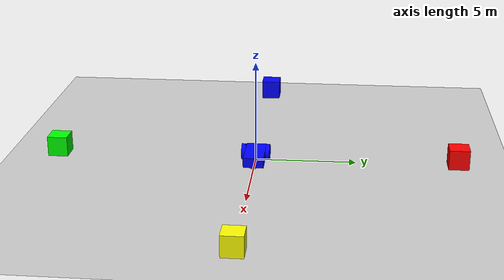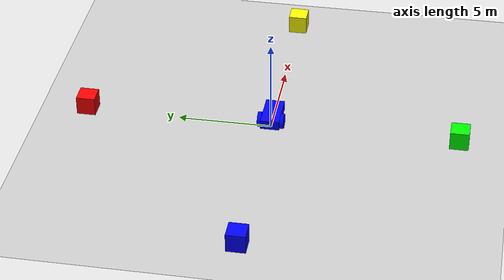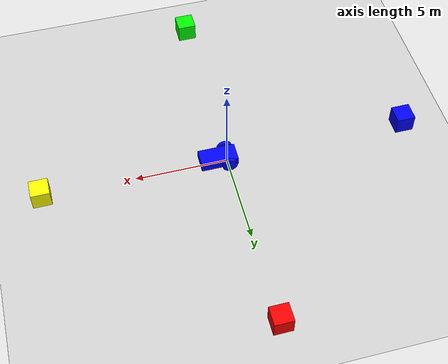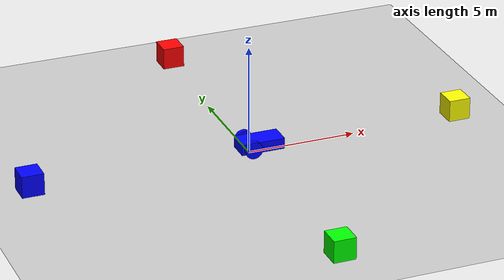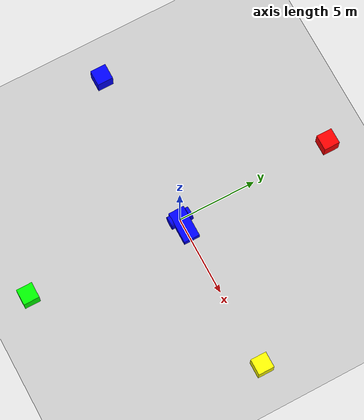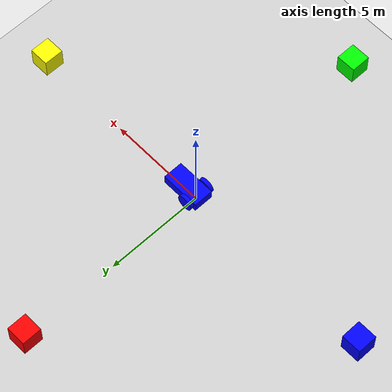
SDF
<?xml version="1.0" encoding="UTF-8"?>
<sdf version='1.9'>
  <world name='myrobot'>
    <physics name='1ms' type='ignored'>
      <max_step_size>0.001</max_step_size>
      <real_time_factor>1</real_time_factor>
      <real_time_update_rate>1000</real_time_update_rate>
    </physics>
    <plugin name='ignition::gazebo::systems::Physics' filename='ignition-gazebo-physics-system'/>
    <plugin name='ignition::gazebo::systems::UserCommands' filename='ignition-gazebo-user-commands-system'/>
    <plugin name='ignition::gazebo::systems::SceneBroadcaster' filename='ignition-gazebo-scene-broadcaster-system'/>
    <plugin name='ignition::gazebo::systems::Contact' filename='ignition-gazebo-contact-system'/>
    <plugin name='gz::sim::systems::Sensors' filename='ignition-gazebo-sensors-system'>
      <render_engine>ogre</render_engine>
    </plugin>
    <gravity>0 0 -9.8</gravity>
    <magnetic_field>6e-06 2.3e-05 -4.2e-05</magnetic_field>
    <atmosphere type='adiabatic'/>
    <scene>
      <ambient>0.4 0.4 0.4 1</ambient>
      <background>0.7 0.7 0.7 1</background>
      <shadows>true</shadows>
    </scene>
    <model name='ground_plane'>
      <static>true</static>
      <link name='link'>
        <collision name='collision'>
          <geometry>
            <plane>
              <normal>0 0 1</normal>
              <size>100 100</size>
            </plane>
          </geometry>
          <surface>
            <friction>
              <ode/>
            </friction>
            <bounce/>
            <contact/>
          </surface>
        </collision>
        <visual name='visual'>
          <geometry>
            <plane>
              <normal>0 0 1</normal>
              <size>100 100</size>
            </plane>
          </geometry>
          <material>
            <ambient>0.8 0.8 0.8 1</ambient>
            <diffuse>0.8 0.8 0.8 1</diffuse>
            <specular>0.8 0.8 0.8 1</specular>
          </material>
        </visual>
        <pose>0 0 0 0 -0 0</pose>
        <inertial>
          <pose>0 0 0 0 -0 0</pose>
          <mass>1</mass>
          <inertia>
            <ixx>1</ixx>
            <ixy>0</ixy>
            <ixz>0</ixz>
            <iyy>1</iyy>
            <iyz>0</iyz>
            <izz>1</izz>
          </inertia>
        </inertial>
        <enable_wind>false</enable_wind>
      </link>
      <pose>10 0 0 0 -0 0</pose>
      <self_collide>false</self_collide>
    </model>
    <model name='little_car' canonical_link='chassis'>
      <pose>0 0 0 0 -0 0</pose>
      <link name='chassis'>
        <pose>0.5 0 0.4 0 -0 0</pose>
        <inertial>
          <mass>1.14395</mass>
          <inertia>
            <ixx>0.095328999999999997</ixx>
            <ixy>0</ixy>
            <ixz>0</ixz>
            <iyy>0.38131700000000002</iyy>
            <iyz>0</iyz>
            <izz>0.47664600000000001</izz>
          </inertia>
          <pose>0 0 0 0 -0 0</pose>
        </inertial>
        <visual name='visual'>
          <geometry>
            <box>
              <size>2 1 0.5</size>
            </box>
          </geometry>
          <material>
            <ambient>0 0 1 1</ambient>
            <diffuse>0 0 1 1</diffuse>
            <specular>0 0 1 1</specular>
          </material>
        </visual>
        <collision name='collision'>
          <geometry>
            <box>
              <size>2 1 0.5</size>
            </box>
          </geometry>
          <surface>
            <friction>
              <ode/>
            </friction>
            <bounce/>
            <contact/>
          </surface>
        </collision>
        <sensor name='camera' type='camera'>
          <pose>1 0 0.5 0 -0 0</pose>
          <topic>camera</topic>
          <update_rate>30</update_rate>
          <enable_metrics>false</enable_metrics>
          <camera name='__default__'>
            <pose>0 0 0 0 -0 0</pose>
            <horizontal_fov>1.0469999999999999</horizontal_fov>
            <image>
              <width>640</width>
              <height>480</height>
              <format>RGB_INT8</format>
              <anti_aliasing>4</anti_aliasing>
            </image>
            <camera_info_topic>__default__</camera_info_topic>
            <trigger_topic></trigger_topic>
            <triggered>false</triggered>
            <clip>
              <near>0.10000000000000001</near>
              <far>100</far>
            </clip>
            <save enabled='false'>
              <path>__default__</path>
            </save>
            <visibility_mask>4294967295</visibility_mask>
            <noise>
              <type>none</type>
              <mean>0</mean>
              <stddev>0</stddev>
            </noise>
            <distortion>
              <k1>0</k1>
              <k2>0</k2>
              <k3>0</k3>
              <p1>0</p1>
              <p2>0</p2>
              <center>0.5 0.5</center>
            </distortion>
            <lens>
              <type>stereographic</type>
              <scale_to_hfov>true</scale_to_hfov>
              <cutoff_angle>1.5708</cutoff_angle>
              <env_texture_size>256</env_texture_size>
            </lens>
            <optical_frame_id></optical_frame_id>
          </camera>
        </sensor>
        <enable_wind>false</enable_wind>
      </link>
      <link name='left_wheel'>
        <pose>0 0.6 0.4 -1.5707 0 0</pose>
        <inertial>
          <mass>1</mass>
          <inertia>
            <ixx>0.043333000000000003</ixx>
            <ixy>0</ixy>
            <ixz>0</ixz>
            <iyy>0.043333000000000003</iyy>
            <iyz>0</iyz>
            <izz>0.080000000000000002</izz>
          </inertia>
          <pose>0 0 0 0 -0 0</pose>
        </inertial>
        <visual name='visual'>
          <geometry>
            <cylinder>
              <radius>0.40000000000000002</radius>
              <length>0.20000000000000001</length>
            </cylinder>
          </geometry>
          <material>
            <ambient>0 0 1 1</ambient>
            <diffuse>0 0 1 1</diffuse>
            <specular>0 0 1 1</specular>
          </material>
        </visual>
        <collision name='collision'>
          <geometry>
            <cylinder>
              <radius>0.40000000000000002</radius>
              <length>0.20000000000000001</length>
            </cylinder>
          </geometry>
          <surface>
            <friction>
              <ode/>
            </friction>
            <bounce/>
            <contact/>
          </surface>
        </collision>
        <enable_wind>false</enable_wind>
      </link>
      <link name='right_wheel'>
        <pose>0 -0.6 0.4 -1.5707 0 0</pose>
        <inertial>
          <mass>1</mass>
          <inertia>
            <ixx>0.043333000000000003</ixx>
            <ixy>0</ixy>
            <ixz>0</ixz>
            <iyy>0.043333000000000003</iyy>
            <iyz>0</iyz>
            <izz>0.080000000000000002</izz>
          </inertia>
          <pose>0 0 0 0 -0 0</pose>
        </inertial>
        <visual name='visual'>
          <geometry>
            <cylinder>
              <radius>0.40000000000000002</radius>
              <length>0.20000000000000001</length>
            </cylinder>
          </geometry>
          <material>
            <ambient>0 0 1 1</ambient>
            <diffuse>0 0 1 1</diffuse>
            <specular>0 0 1 1</specular>
          </material>
        </visual>
        <collision name='collision'>
          <geometry>
            <cylinder>
              <radius>0.40000000000000002</radius>
              <length>0.20000000000000001</length>
            </cylinder>
          </geometry>
          <surface>
            <friction>
              <ode/>
            </friction>
            <bounce/>
            <contact/>
          </surface>
        </collision>
        <enable_wind>false</enable_wind>
      </link>
      <frame name='caster_frame' attached_to='chassis'>
        <pose>0.8 0 -0.2 0 0 0</pose>
      </frame>
      <link name='caster'>
        <pose>1.3 0 0.2 0 -0 0</pose>
        <inertial>
          <mass>1</mass>
          <inertia>
            <ixx>0.016</ixx>
            <ixy>0</ixy>
            <ixz>0</ixz>
            <iyy>0.016</iyy>
            <iyz>0</iyz>
            <izz>0.016</izz>
          </inertia>
          <pose>0 0 0 0 -0 0</pose>
        </inertial>
        <visual name='visual'>
          <geometry>
            <sphere>
              <radius>0.20000000000000001</radius>
            </sphere>
          </geometry>
          <material>
            <ambient>0 1 0 1</ambient>
            <diffuse>0 1 0 1</diffuse>
            <specular>0 1 0 1</specular>
          </material>
        </visual>
        <collision name='collision'>
          <geometry>
            <sphere>
              <radius>0.20000000000000001</radius>
            </sphere>
          </geometry>
          <surface>
            <friction>
              <ode/>
            </friction>
            <bounce/>
            <contact/>
          </surface>
        </collision>
        <enable_wind>false</enable_wind>
      </link>
      <joint name='left_wheel_joint' type='revolute'>
        <pose>0 0 0 0 -0 0</pose>
        <parent>chassis</parent>
        <child>left_wheel</child>
        <axis>
          <xyz>0 9.6e-05 1</xyz>
          <limit>
            <lower>-1.7976900000000001e+308</lower>
            <upper>1.7976900000000001e+308</upper>
            <effort>inf</effort>
            <velocity>inf</velocity>
            <stiffness>100000000</stiffness>
            <dissipation>1</dissipation>
          </limit>
          <dynamics>
            <spring_reference>0</spring_reference>
            <spring_stiffness>0</spring_stiffness>
            <damping>0</damping>
            <friction>0</friction>
          </dynamics>
        </axis>
      </joint>
      <joint name='right_wheel_joint' type='revolute'>
        <pose>0 0 0 0 -0 0</pose>
        <parent>chassis</parent>
        <child>right_wheel</child>
        <axis>
          <xyz>0 9.6e-05 1</xyz>
          <limit>
            <lower>-1.7976900000000001e+308</lower>
            <upper>1.7976900000000001e+308</upper>
            <effort>inf</effort>
            <velocity>inf</velocity>
            <stiffness>100000000</stiffness>
            <dissipation>1</dissipation>
          </limit>
          <dynamics>
            <spring_reference>0</spring_reference>
            <spring_stiffness>0</spring_stiffness>
            <damping>0</damping>
            <friction>0</friction>
          </dynamics>
        </axis>
      </joint>
      <joint name='caster_wheel' type='ball'>
        <parent>chassis</parent>
        <child>caster</child>
        <pose>0 0 0 0 -0 0</pose>
      </joint>
      <plugin name='ignition::gazebo::systems::DiffDrive' filename='libignition-gazebo-diff-drive-system.so'>
        <left_joint>left_wheel_joint</left_joint>
        <right_joint>right_wheel_joint</right_joint>
        <wheel_separation>1.2</wheel_separation>
        <wheel_radius>0.4</wheel_radius>
        <odom_publish_frequency>1</odom_publish_frequency>
        <topic>cmd_vel</topic>
      </plugin>
      <static>false</static>
      <self_collide>false</self_collide>
    </model>
    <model name='red_box'>
      <pose>0 10 0.5 0 -0 0</pose>
      <link name='box_link'>
        <inertial>
          <inertia>
            <ixx>0.16666</ixx>
            <ixy>0</ixy>
            <ixz>0</ixz>
            <iyy>0.16666</iyy>
            <iyz>0</iyz>
            <izz>0.16666</izz>
          </inertia>
          <mass>1</mass>
          <pose>0 0 0 0 -0 0</pose>
        </inertial>
        <collision name='box_collision'>
          <geometry>
            <box>
              <size>1 1 1</size>
            </box>
          </geometry>
          <surface>
            <friction>
              <ode/>
            </friction>
            <bounce/>
            <contact/>
          </surface>
        </collision>
        <visual name='box_visual'>
          <geometry>
            <box>
              <size>1 1 1</size>
            </box>
          </geometry>
          <material>
            <ambient>1 0 0 1</ambient>
            <diffuse>1 0 0 1</diffuse>
            <specular>1 0 0 1</specular>
          </material>
        </visual>
        <pose>0 0 0 0 -0 0</pose>
        <enable_wind>false</enable_wind>
      </link>
      <static>false</static>
      <self_collide>false</self_collide>
    </model>
    <model name='green_box'>
      <pose>0 -10 0.5 0 -0 0</pose>
      <link name='box_link'>
        <inertial>
          <inertia>
            <ixx>0.16666</ixx>
            <ixy>0</ixy>
            <ixz>0</ixz>
            <iyy>0.16666</iyy>
            <iyz>0</iyz>
            <izz>0.16666</izz>
          </inertia>
          <mass>1</mass>
          <pose>0 0 0 0 -0 0</pose>
        </inertial>
        <collision name='box_collision'>
          <geometry>
            <box>
              <size>1 1 1</size>
            </box>
          </geometry>
          <surface>
            <friction>
              <ode/>
            </friction>
            <bounce/>
            <contact/>
          </surface>
        </collision>
        <visual name='box_visual'>
          <geometry>
            <box>
              <size>1 1 1</size>
            </box>
          </geometry>
          <material>
            <ambient>0 1 0 1</ambient>
            <diffuse>0 1 0 1</diffuse>
            <specular>0 1 0 1</specular>
          </material>
        </visual>
        <pose>0 0 0 0 -0 0</pose>
        <enable_wind>false</enable_wind>
      </link>
      <static>false</static>
      <self_collide>false</self_collide>
    </model>
    <model name='blue_box'>
      <pose>-10 0 0.5 0 -0 0</pose>
      <link name='box_link'>
        <inertial>
          <inertia>
            <ixx>0.16666</ixx>
            <ixy>0</ixy>
            <ixz>0</ixz>
            <iyy>0.16666</iyy>
            <iyz>0</iyz>
            <izz>0.16666</izz>
          </inertia>
          <mass>1</mass>
          <pose>0 0 0 0 -0 0</pose>
        </inertial>
        <collision name='box_collision'>
          <geometry>
            <box>
              <size>1 1 1</size>
            </box>
          </geometry>
          <surface>
            <friction>
              <ode/>
            </friction>
            <bounce/>
            <contact/>
          </surface>
        </collision>
        <visual name='box_visual'>
          <geometry>
            <box>
              <size>1 1 1</size>
            </box>
          </geometry>
          <material>
            <ambient>0 0 1 1</ambient>
            <diffuse>0 0 1 1</diffuse>
            <specular>0 0 1 1</specular>
          </material>
        </visual>
        <pose>0 0 0 0 -0 0</pose>
        <enable_wind>false</enable_wind>
      </link>
      <static>false</static>
      <self_collide>false</self_collide>
    </model>
    <model name='yellow_box'>
      <pose>10 0 0.5 0 -0 0</pose>
      <link name='box_link'>
        <inertial>
          <inertia>
            <ixx>0.16666</ixx>
            <ixy>0</ixy>
            <ixz>0</ixz>
            <iyy>0.16666</iyy>
            <iyz>0</iyz>
            <izz>0.16666</izz>
          </inertia>
          <mass>1</mass>
          <pose>0 0 0 0 -0 0</pose>
        </inertial>
        <collision name='box_collision'>
          <geometry>
            <box>
              <size>1 1 1</size>
            </box>
          </geometry>
          <surface>
            <friction>
              <ode/>
            </friction>
            <bounce/>
            <contact/>
          </surface>
        </collision>
        <visual name='box_visual'>
          <geometry>
            <box>
              <size>1 1 1</size>
            </box>
          </geometry>
          <material>
            <ambient>1 1 0 1</ambient>
            <diffuse>1 1 0 1</diffuse>
            <specular>1 1 0 1</specular>
          </material>
        </visual>
        <pose>0 0 0 0 -0 0</pose>
        <enable_wind>false</enable_wind>
      </link>
      <static>false</static>
      <self_collide>false</self_collide>
    </model>
    <light name='sun' type='directional'>
      <pose>0 0 2 0 -0 0</pose>
      <cast_shadows>true</cast_shadows>
      <intensity>1</intensity>
      <direction>-0.5 0.1 -0.9</direction>
      <diffuse>1 1 1 1</diffuse>
      <specular>0.2 0.2 0.2 1</specular>
      <attenuation>
        <range>1000</range>
        <linear>0.01</linear>
        <constant>0.90000000000000002</constant>
        <quadratic>0.001</quadratic>
      </attenuation>
      <spot>
        <inner_angle>0</inner_angle>
        <outer_angle>0</outer_angle>
        <falloff>0</falloff>
      </spot>
    </light>
  </world>
</sdf>
